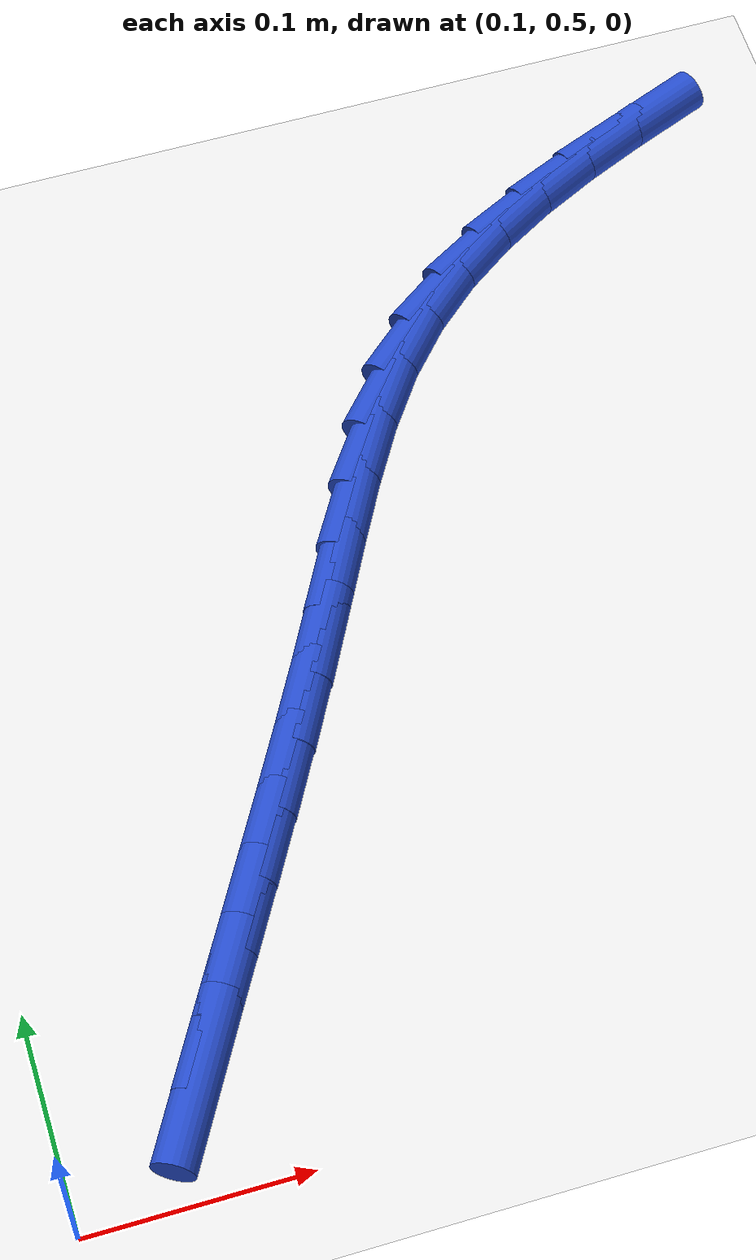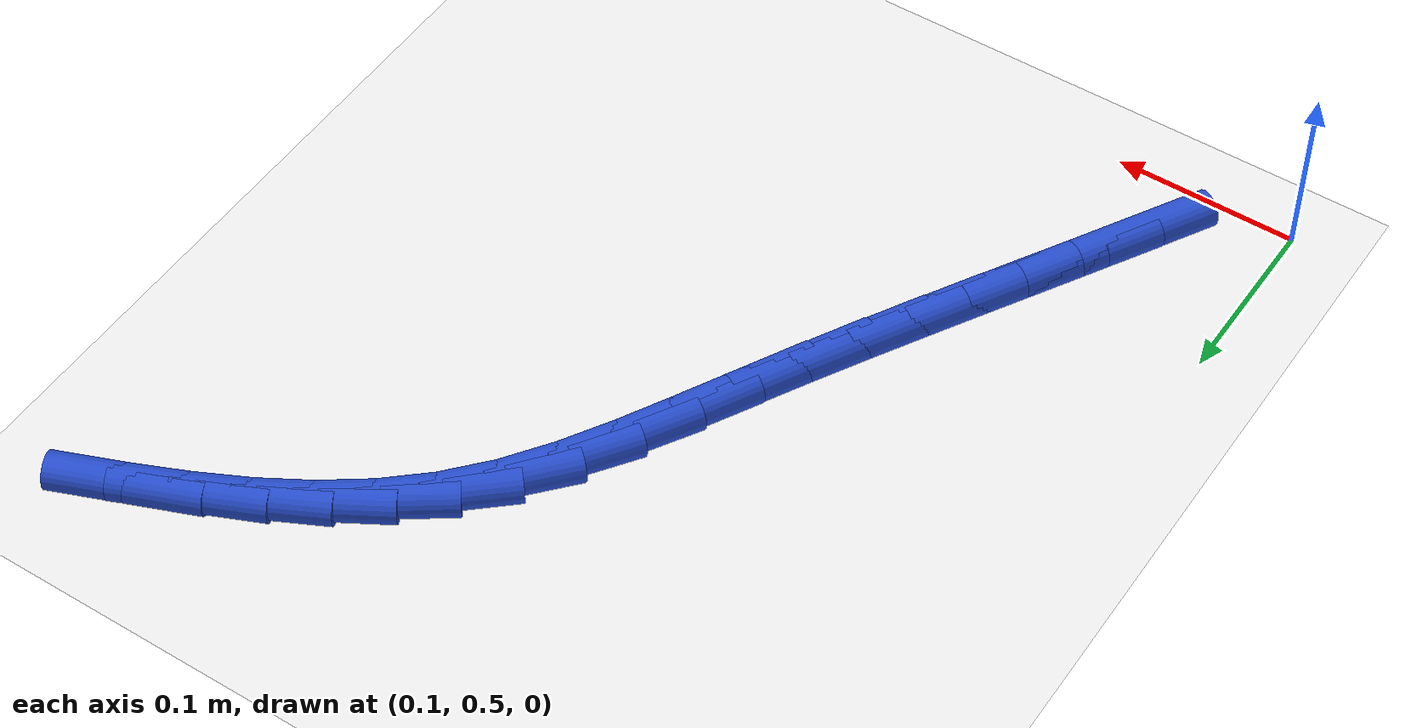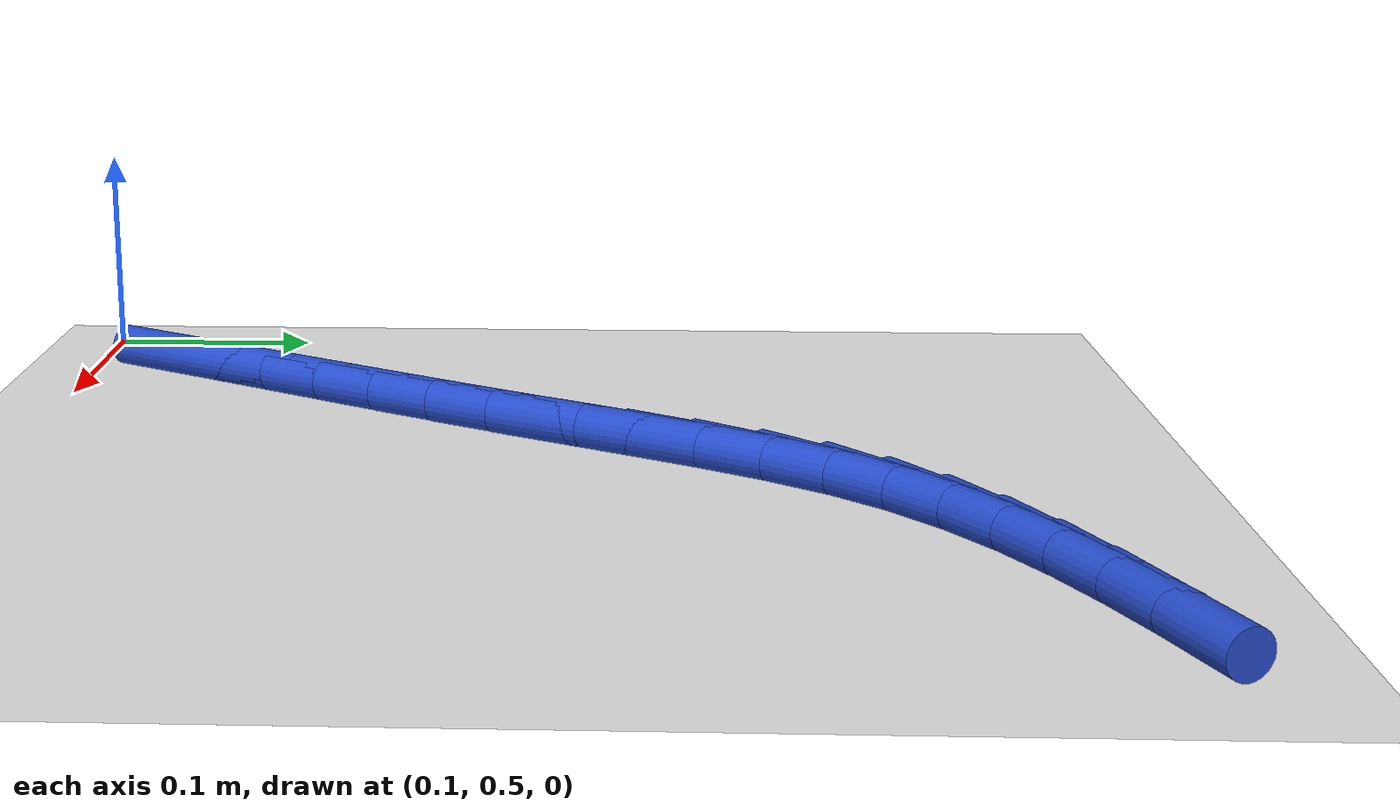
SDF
<sdf version="1.6">
 <world name="default">
  <model name="ground_plane">
   <static>1</static>
   <link name="link">
    <collision name="collision">
     <geometry><plane><normal>0 0 1</normal><size>100 100</size></plane></geometry>
     <surface><friction><ode><mu>100</mu><mu2>50</mu2></ode></friction></surface>
    </collision>
    <visual name="visual">
     <cast_shadows>0</cast_shadows>
     <geometry><plane><normal>0 0 1</normal><size>100 100</size></plane></geometry>
     <material>
      <script><uri>file://media/materials/scripts/gazebo.material</uri><name>Gazebo/WhiteGlow</name></script>
     </material>
    </visual>
   </link>
  </model>
  <model name="line">
   <link name="link_18">
    <pose>0.16308182259661358 0.5472872261737454 0.01 0 1.57 1.0508504763976023</pose>
    <collision name="collision">
     <geometry><cylinder><radius>0.01</radius><length>0.08</length></cylinder></geometry>
    </collision>
    <visual name="visual">
     <material>
      <script><name>Gazebo/Blue</name><uri>file://media/materials/scripts/gazebo.material</uri></script>
     </material>
     <geometry><cylinder><radius>0.01</radius><length>0.08</length></cylinder></geometry>
    </visual>
   </link>
   <link name="link_19">
    <pose>0.17919718901008924 0.5754368328933609 0.01 0 1.57 1.0465462204213678</pose>
    <collision name="collision">
     <geometry><cylinder><radius>0.01</radius><length>0.08</length></cylinder></geometry>
    </collision>
    <visual name="visual">
     <material>
      <script><name>Gazebo/Blue</name><uri>file://media/materials/scripts/gazebo.material</uri></script>
     </material>
     <geometry><cylinder><radius>0.01</radius><length>0.08</length></cylinder></geometry>
    </visual>
   </link>
   <link name="link_20">
    <pose>0.19549947832494713 0.6036308013905471 0.01 0 1.57 1.045618751043367</pose>
    <collision name="collision">
     <geometry><cylinder><radius>0.01</radius><length>0.08</length></cylinder></geometry>
    </collision>
    <visual name="visual">
     <material>
      <script><name>Gazebo/Blue</name><uri>file://media/materials/scripts/gazebo.material</uri></script>
     </material>
     <geometry><cylinder><radius>0.01</radius><length>0.08</length></cylinder></geometry>
    </visual>
   </link>
   <link name="link_21">
    <pose>0.21189335052279656 0.6319225726314667 0.01 0 1.57 1.048027693953845</pose>
    <collision name="collision">
     <geometry><cylinder><radius>0.01</radius><length>0.08</length></cylinder></geometry>
    </collision>
    <visual name="visual">
     <material>
      <script><name>Gazebo/Blue</name><uri>file://media/materials/scripts/gazebo.material</uri></script>
     </material>
     <geometry><cylinder><radius>0.01</radius><length>0.08</length></cylinder></geometry>
    </visual>
   </link>
   <link name="link_22">
    <pose>0.22828346558524665 0.660365587582282 0.01 0 1.57 1.053734053638647</pose>
    <collision name="collision">
     <geometry><cylinder><radius>0.01</radius><length>0.08</length></cylinder></geometry>
    </collision>
    <visual name="visual">
     <material>
      <script><name>Gazebo/Blue</name><uri>file://media/materials/scripts/gazebo.material</uri></script>
     </material>
     <geometry><cylinder><radius>0.01</radius><length>0.08</length></cylinder></geometry>
    </visual>
   </link>
   <link name="link_23">
    <pose>0.2445744834939068 0.6890132872091559 0.01 0 1.57 1.0626993934705855</pose>
    <collision name="collision">
     <geometry><cylinder><radius>0.01</radius><length>0.08</length></cylinder></geometry>
    </collision>
    <visual name="visual">
     <material>
      <script><name>Gazebo/Blue</name><uri>file://media/materials/scripts/gazebo.material</uri></script>
     </material>
     <geometry><cylinder><radius>0.01</radius><length>0.08</length></cylinder></geometry>
    </visual>
   </link>
   <link name="link_24">
    <pose>0.26067106423038616 0.7179191124782511 0.01 0 1.57 1.0748840027256776</pose>
    <collision name="collision">
     <geometry><cylinder><radius>0.01</radius><length>0.08</length></cylinder></geometry>
    </collision>
    <visual name="visual">
     <material>
      <script><name>Gazebo/Blue</name><uri>file://media/materials/scripts/gazebo.material</uri></script>
     </material>
     <geometry><cylinder><radius>0.01</radius><length>0.08</length></cylinder></geometry>
    </visual>
   </link>
   <link name="link_25">
    <pose>0.2764778677762939 0.7471365043557301 0.01 0 1.57 1.0858496951649557</pose>
    <collision name="collision">
     <geometry><cylinder><radius>0.01</radius><length>0.08</length></cylinder></geometry>
    </collision>
    <visual name="visual">
     <material>
      <script><name>Gazebo/Blue</name><uri>file://media/materials/scripts/gazebo.material</uri></script>
     </material>
     <geometry><cylinder><radius>0.01</radius><length>0.08</length></cylinder></geometry>
    </visual>
   </link>
   <link name="link_26">
    <pose>0.2919996080275518 0.7765943025526106 0.01 0 1.57 1.0745052722925703</pose>
    <collision name="collision">
     <geometry><cylinder><radius>0.01</radius><length>0.08</length></cylinder></geometry>
    </collision>
    <visual name="visual">
     <material>
      <script><name>Gazebo/Blue</name><uri>file://media/materials/scripts/gazebo.material</uri></script>
     </material>
     <geometry><cylinder><radius>0.01</radius><length>0.08</length></cylinder></geometry>
    </visual>
   </link>
   <link name="link_27">
    <pose>0.30771971972837653 0.805625176015661 0.01 0 1.57 1.033300610092213</pose>
    <collision name="collision">
     <geometry><cylinder><radius>0.01</radius><length>0.08</length></cylinder></geometry>
    </collision>
    <visual name="visual">
     <material>
      <script><name>Gazebo/Blue</name><uri>file://media/materials/scripts/gazebo.material</uri></script>
     </material>
     <geometry><cylinder><radius>0.01</radius><length>0.08</length></cylinder></geometry>
    </visual>
   </link>
   <link name="link_28">
    <pose>0.3242646478944526 0.8333836971179575 0.01 0 1.57 0.9588224311259876</pose>
    <collision name="collision">
     <geometry><cylinder><radius>0.01</radius><length>0.08</length></cylinder></geometry>
    </collision>
    <visual name="visual">
     <material>
      <script><name>Gazebo/Blue</name><uri>file://media/materials/scripts/gazebo.material</uri></script>
     </material>
     <geometry><cylinder><radius>0.01</radius><length>0.08</length></cylinder></geometry>
    </visual>
   </link>
   <link name="link_29">
    <pose>0.3422608629879262 0.8590244065430506 0.01 0 1.57 0.8484412714449183</pose>
    <collision name="collision">
     <geometry><cylinder><radius>0.01</radius><length>0.08</length></cylinder></geometry>
    </collision>
    <visual name="visual">
     <material>
      <script><name>Gazebo/Blue</name><uri>file://media/materials/scripts/gazebo.material</uri></script>
     </material>
     <geometry><cylinder><radius>0.01</radius><length>0.08</length></cylinder></geometry>
    </visual>
   </link>
   <link name="link_30">
    <pose>0.36229711500374795 0.8817607542497047 0.01 0 1.57 0.7280725384580512</pose>
    <collision name="collision">
     <geometry><cylinder><radius>0.01</radius><length>0.08</length></cylinder></geometry>
    </collision>
    <visual name="visual">
     <material>
      <script><name>Gazebo/Blue</name><uri>file://media/materials/scripts/gazebo.material</uri></script>
     </material>
     <geometry><cylinder><radius>0.01</radius><length>0.08</length></cylinder></geometry>
    </visual>
   </link>
   <link name="link_31">
    <pose>0.38448955726475376 0.9015442597247725 0.01 0 1.57 0.6213461389352507</pose>
    <collision name="collision">
     <geometry><cylinder><radius>0.01</radius><length>0.08</length></cylinder></geometry>
    </collision>
    <visual name="visual">
     <material>
      <script><name>Gazebo/Blue</name><uri>file://media/materials/scripts/gazebo.material</uri></script>
     </material>
     <geometry><cylinder><radius>0.01</radius><length>0.08</length></cylinder></geometry>
    </visual>
   </link>
   <link name="link_32">
    <pose>0.4086324298595755 0.9188291847782641 0.01 0 1.57 0.5324682248640784</pose>
    <collision name="collision">
     <geometry><cylinder><radius>0.01</radius><length>0.08</length></cylinder></geometry>
    </collision>
    <visual name="visual">
     <material>
      <script><name>Gazebo/Blue</name><uri>file://media/materials/scripts/gazebo.material</uri></script>
     </material>
     <geometry><cylinder><radius>0.01</radius><length>0.08</length></cylinder></geometry>
    </visual>
   </link>
   <link name="link_33">
    <pose>0.4345137888299921 0.9340794490464314 0.01 0 1.57 0.4629343465894515</pose>
    <collision name="collision">
     <geometry><cylinder><radius>0.01</radius><length>0.08</length></cylinder></geometry>
    </collision>
    <visual name="visual">
     <material>
      <script><name>Gazebo/Blue</name><uri>file://media/materials/scripts/gazebo.material</uri></script>
     </material>
     <geometry><cylinder><radius>0.01</radius><length>0.08</length></cylinder></geometry>
    </visual>
   </link>
   <link name="link_34">
    <pose>0.46192169021778257 0.9477589721655271 0.01 0 1.57 0.41260352555230706</pose>
    <collision name="collision">
     <geometry><cylinder><radius>0.01</radius><length>0.08</length></cylinder></geometry>
    </collision>
    <visual name="visual">
     <material>
      <script><name>Gazebo/Blue</name><uri>file://media/materials/scripts/gazebo.material</uri></script>
     </material>
     <geometry><cylinder><radius>0.01</radius><length>0.08</length></cylinder></geometry>
    </visual>
   </link>
   <link name="link_35">
    <pose>0.49064419006472604 0.9603316737718033 0.01 0 1.57 0.380498803944782</pose>
    <collision name="collision">
     <geometry><cylinder><radius>0.01</radius><length>0.08</length></cylinder></geometry>
    </collision>
    <visual name="visual">
     <material>
      <script><name>Gazebo/Blue</name><uri>file://media/materials/scripts/gazebo.material</uri></script>
     </material>
     <geometry><cylinder><radius>0.01</radius><length>0.08</length></cylinder></geometry>
    </visual>
   </link>
  </model>
 </world>
</sdf>
